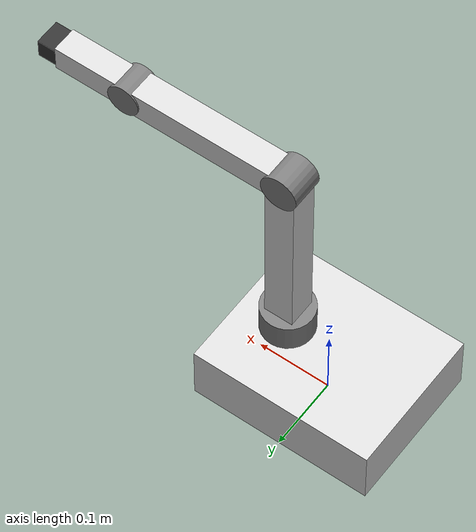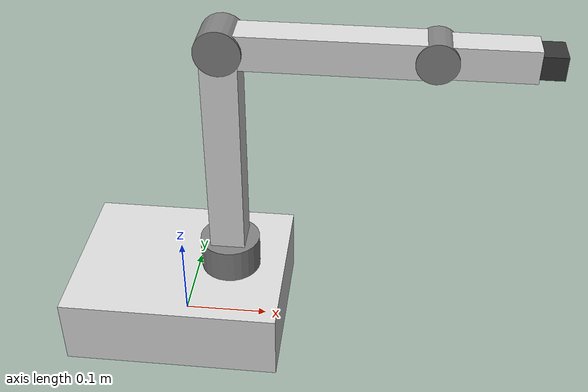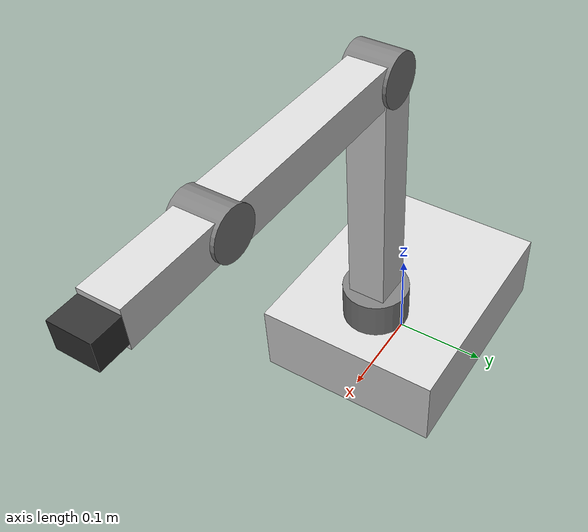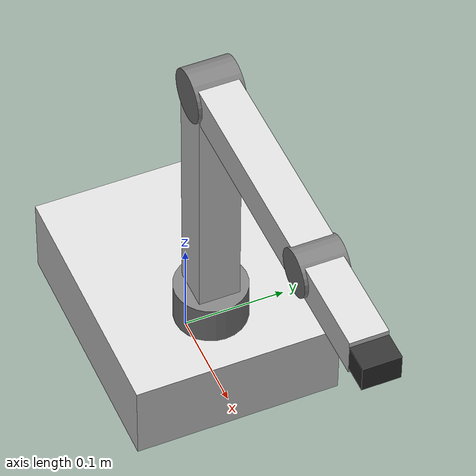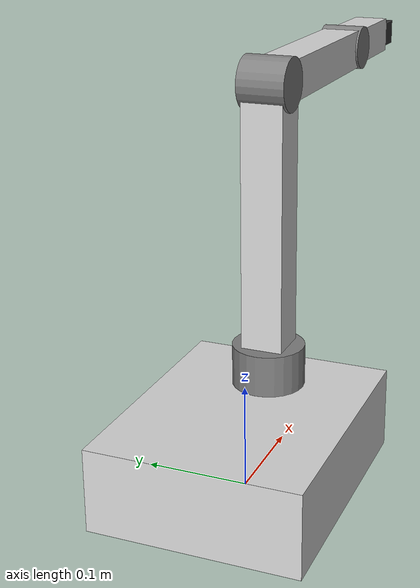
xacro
<?xml version="1.0"?>
<robot xmlns:xacro="http://www.ros.org/wiki/xacro" name="armando_4dof">

  <!-- MATERIALI (Grigio/Bianco/Nero come da modello di riferimento) -->
  <material name="robot_white">
    <color rgba="0.85 0.85 0.85 1.0"/>
  </material>

  <material name="robot_grey">
    <color rgba="0.5 0.5 0.5 1.0"/>
  </material>

  <material name="robot_dark">
    <color rgba="0.2 0.2 0.2 1.0"/>
  </material>

  <!-- WORLD LINK -->
  <link name="world"/>

  <joint name="world_joint" type="fixed">
    <parent link="world"/>
    <child link="base_link"/>
    <origin xyz="0 0 0" rpy="0 0 0"/>
  </joint>

  <!-- BASE LINK -->
  <link name="base_link">
    <visual>
      <geometry>
        <box size="0.25 0.2 0.08"/>
      </geometry>
      <origin rpy="0 0 0" xyz="0 0 0.04"/>
      <material name="robot_white"/>
    </visual>
    <collision>
      <geometry>
        <box size="0.25 0.2 0.08"/>
      </geometry>
      <origin rpy="0 0 0" xyz="0 0 0.04"/>
    </collision>
    <inertial>
      <mass value="2.0"/>
      <inertia ixx="0.005" ixy="0.0" ixz="0.0" iyy="0.005" iyz="0.0" izz="0.008"/>
    </inertial>
  </link>

  <!-- DOF 1: GIUNTO j0 - Rotazione della base (Asse Z) -->
  <joint name="j0" type="revolute">
    <parent link="base_link"/>
    <child link="shoulder_turret"/>
    <origin xyz="0.06 0 0.08" rpy="0 0 0"/>
    <axis xyz="0 0 1"/>
    <limit effort="300" velocity="1.0" lower="-2.57" upper="2.57"/>
  </joint>

  <link name="shoulder_turret">
    <visual>
      <geometry>
        <cylinder radius="0.035" length="0.04"/>
      </geometry>
      <origin rpy="0 0 0" xyz="0 0 0.02"/>
      <material name="robot_grey"/>
    </visual>
    <collision>
      <geometry>
        <cylinder radius="0.035" length="0.04"/>
      </geometry>
      <origin rpy="0 0 0" xyz="0 0 0.02"/>
    </collision>
    <inertial>
      <mass value="0.3"/>
      <inertia ixx="0.0002" ixy="0.0" ixz="0.0" iyy="0.0002" iyz="0.0" izz="0.0002"/>
    </inertial>
  </link>

  <!-- DOF 2: GIUNTO j1 - Spalla (Asse Y) -->
  <joint name="j1" type="revolute">
    <parent link="shoulder_turret"/>
    <child link="upper_arm"/>
    <origin xyz="0 0 0.04" rpy="0 0 0"/>
    <axis xyz="0 1 0"/>
    <limit effort="300" velocity="1.0" lower="-1.57" upper="1.57"/>
  </joint>

  <link name="upper_arm">
    <visual>
      <geometry>
        <box size="0.04 0.04 0.25"/>
      </geometry>
      <origin rpy="0 0 0" xyz="0 0 0.125"/>
      <material name="robot_white"/>
    </visual>
    <collision>
      <geometry>
        <box size="0.04 0.04 0.25"/>
      </geometry>
      <origin rpy="0 0 0" xyz="0 0 0.125"/>
    </collision>
    <inertial>
      <mass value="0.4"/>
      <inertia ixx="0.002" ixy="0.0" ixz="0.0" iyy="0.002" iyz="0.0" izz="0.0002"/>
    </inertial>
  </link>

  <!-- Snodo circolare spalla-gomito -->
  <joint name="joint_elbow_visual" type="fixed">
    <parent link="upper_arm"/>
    <child link="elbow_disc"/>
    <origin xyz="0 0 0.25" rpy="0 0 0"/>
  </joint>

  <link name="elbow_disc">
    <visual>
      <geometry>
        <cylinder radius="0.025" length="0.045"/>
      </geometry>
      <origin rpy="1.5708 0 0" xyz="0 0 0"/>
      <material name="robot_grey"/>
    </visual>
  </link>

  <!-- DOF 3: GIUNTO j2 - Gomito (Asse Y) -->
  <joint name="j2" type="revolute">
    <parent link="elbow_disc"/>
    <child link="forearm"/>
    <origin xyz="0 0 0" rpy="0 0 0"/>
    <axis xyz="0 1 0"/>
    <limit effort="300" velocity="1.0" lower="-2.0" upper="2.0"/>
  </joint>

  <link name="forearm">
    <visual>
      <geometry>
        <box size="0.22 0.038 0.038"/>
      </geometry>
      <origin rpy="0 0 0" xyz="0.11 0 0"/>
      <material name="robot_white"/>
    </visual>
    <collision>
      <geometry>
        <box size="0.22 0.038 0.038"/>
      </geometry>
      <origin rpy="0 0 0" xyz="0.11 0 0"/>
    </collision>
    <inertial>
      <mass value="0.3"/>
      <inertia ixx="0.0001" ixy="0.0" ixz="0.0" iyy="0.001" iyz="0.0" izz="0.001"/>
    </inertial>
  </link>

  <!-- Snodo circolare gomito-polso -->
  <joint name="joint_wrist_visual" type="fixed">
    <parent link="forearm"/>
    <child link="wrist_disc"/>
    <origin xyz="0.22 0 0" rpy="0 0 0"/>
  </joint>

  <link name="wrist_disc">
    <visual>
      <geometry>
        <cylinder radius="0.022" length="0.042"/>
      </geometry>
      <origin rpy="1.5708 0 0" xyz="0 0 0"/>
      <material name="robot_grey"/>
    </visual>
  </link>

  <!-- DOF 4: GIUNTO j3 - Polso (Asse Y) -->
  <joint name="j3" type="revolute">
    <parent link="wrist_disc"/>
    <child link="end_effector"/>
    <origin xyz="0 0 0" rpy="0 0 0"/>
    <axis xyz="0 1 0"/>
    <limit effort="100" velocity="1.0" lower="-1.57" upper="1.57"/>
  </joint>

  <!-- END EFFECTOR (Supporto per il montaggio della telecamera) -->
  <link name="end_effector">
    <visual>
      <geometry>
        <box size="0.10 0.035 0.035"/>
      </geometry>
      <origin rpy="0 0 0" xyz="0.05 0 0"/>
      <material name="robot_white"/>
    </visual>
    <collision>
      <geometry>
        <box size="0.10 0.035 0.035"/>
      </geometry>
      <origin rpy="0 0 0" xyz="0.05 0 0"/>
    </collision>
    <inertial>
      <mass value="0.12"/>
      <inertia ixx="0.00004" ixy="0.0" ixz="0.0" iyy="0.00015" iyz="0.0" izz="0.00015"/>
    </inertial>
  </link>

  <!-- CAMERA LINK (Montata direttamente in testa all'End Effector) -->
  <joint name="camera_joint" type="fixed">
    <parent link="end_effector"/>
    <child link="camera_link"/>
    <!-- Posizionata sulla parte frontale avanzata dell'end effector -->
    <origin xyz="0.10 0 0" rpy="0 0 0"/>
  </joint>

  <link name="camera_link">
    <visual>
      <geometry>
        <box size="0.025 0.035 0.025"/>
      </geometry>
      <origin rpy="0 0 0" xyz="0.0125 0 0"/>
      <material name="robot_dark"/>
    </visual>
    <collision>
      <geometry>
        <box size="0.025 0.035 0.025"/>
      </geometry>
      <origin rpy="0 0 0" xyz="0.0125 0 0"/>
    </collision>
    <inertial>
      <mass value="0.02"/>
      <inertia ixx="1e-5" ixy="0.0" ixz="0.0" iyy="1e-5" iyz="0.0" izz="1e-5"/>
    </inertial>
  </link>

  <!-- Frame ottico ROS per l'orientamento corretto del flusso video -->
  <joint name="camera_optical_joint" type="fixed">
    <parent link="camera_link"/>
    <child link="camera_optical_link"/>
    <origin xyz="0.025 0 0" rpy="-1.5708 0 -1.5708"/>
  </joint>

  <link name="camera_optical_link"/>

  <!-- GAZEBO PLUGINS & MATERIALI GAZEBO -->
  <gazebo>
    <plugin filename="gz-sim-sensors-system" name="gz::sim::systems::Sensors">
      <render_engine>ogre2</render_engine>
    </plugin>
    <plugin filename="gz_ros2_control-system" name="gz_ros2_control::GazeboSimROS2ControlPlugin">
      <parameters>$(find agricultural_robot)/config/arm2_controllers.yaml</parameters>
      <control_period>0.01</control_period>
    </plugin>
  </gazebo>

  <gazebo reference="base_link">
    <material>Gazebo/White</material>
  </gazebo>
  <gazebo reference="shoulder_turret">
    <material>Gazebo/Grey</material>
  </gazebo>
  <gazebo reference="upper_arm">
    <material>Gazebo/White</material>
  </gazebo>
  <gazebo reference="elbow_disc">
    <material>Gazebo/Grey</material>
  </gazebo>
  <gazebo reference="forearm">
    <material>Gazebo/White</material>
  </gazebo>
  <gazebo reference="wrist_disc">
    <material>Gazebo/Grey</material>
  </gazebo>
  <gazebo reference="end_effector">
    <material>Gazebo/White</material>
  </gazebo>

  <gazebo reference="camera_link">
    <material>Gazebo/Black</material>
    <sensor name="camera" type="camera">
      <camera>
        <horizontal_fov>1.5708</horizontal_fov> // 90 gradi
        <image>
          <width>640</width>
          <height>480</height>
          <format>R8G8B8</format>
        </image>
        <clip>
          <near>0.1</near>
          <far>100</far>
        </clip>
      </camera>
      <always_on>1</always_on>
      <update_rate>30</update_rate>
      <visualize>true</visualize>
      <topic>camera</topic>
      <gz_frame_id>camera_optical_link</gz_frame_id>
    </sensor>
  </gazebo>

  <!-- ROS2 CONTROL (4 Giunti attuati: j0, j1, j2, j3) -->
  <ros2_control name="GazeboSimSystem" type="system">
    <hardware>
      <plugin>gz_ros2_control/GazeboSimSystem</plugin>
    </hardware>

    <joint name="j0">
      <command_interface name="position">
        <param name="min">-2.57</param>
        <param name="max">2.57</param>
      </command_interface>
      <state_interface name="position"/>
      <state_interface name="velocity"/>
    </joint>

    <joint name="j1">
      <command_interface name="position">
        <param name="min">-1.57</param>
        <param name="max">1.57</param>
      </command_interface>
      <state_interface name="position"/>
      <state_interface name="velocity"/>
    </joint>

    <joint name="j2">
      <command_interface name="position">
        <param name="min">-2.0</param>
        <param name="max">2.0</param>
      </command_interface>
      <state_interface name="position"/>
      <state_interface name="velocity"/>
    </joint>

    <joint name="j3">
      <command_interface name="position">
        <param name="min">-1.57</param>
        <param name="max">1.57</param>
      </command_interface>
      <state_interface name="position"/>
      <state_interface name="velocity"/>
    </joint>
  </ros2_control>

</robot>
